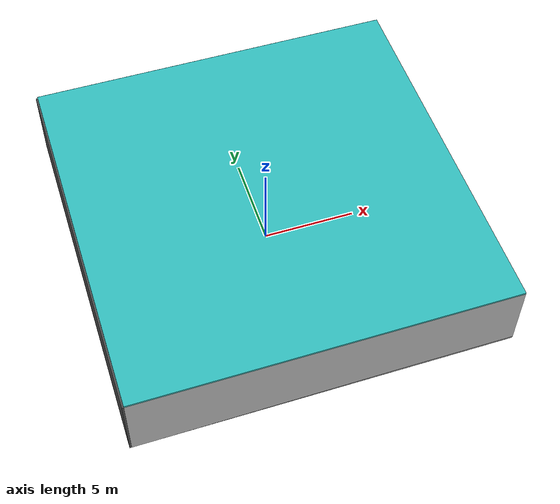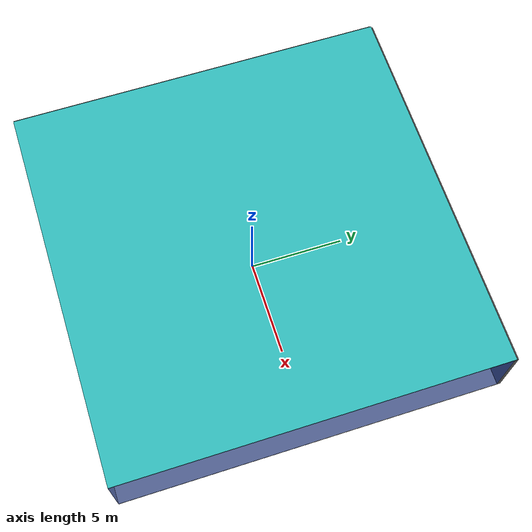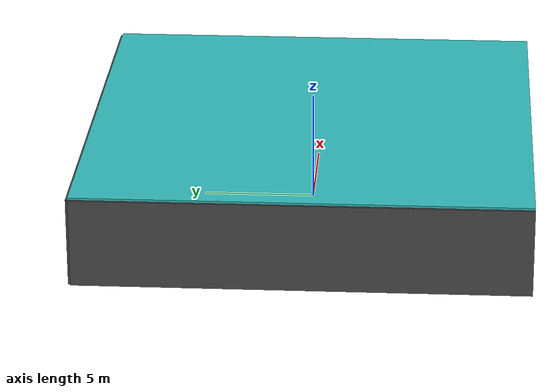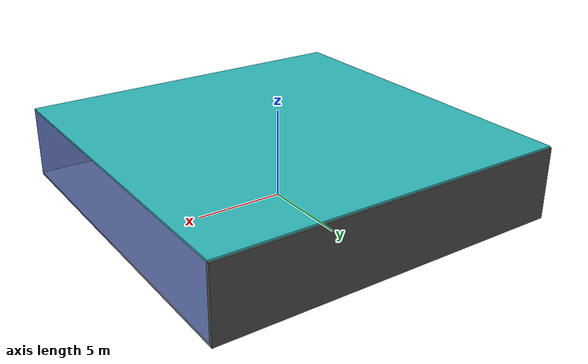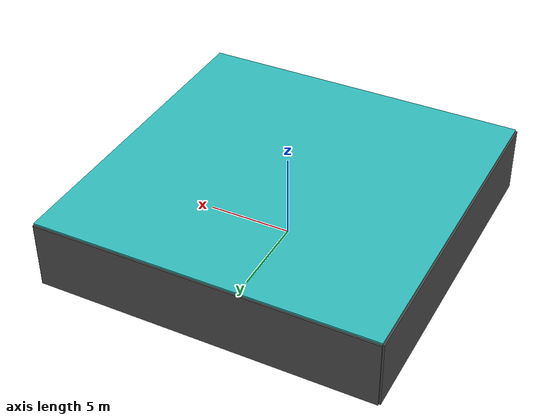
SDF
<sdf version="1.4">
 <world name="default">
  <physics type="ode">
   <max_step_size>0.001</max_step_size>
   <real_time_factor>1</real_time_factor>
   <real_time_update_rate>1000</real_time_update_rate>
   <gravity>0 0 -9.8</gravity>
  </physics>
  <scene><ambient>0.4 0.4 0.4 1</ambient><background>0.7 0.7 0.7 1</background><shadows>1</shadows></scene>
  <model name="Surrounding">
   <static>1</static>
   <link name="Ceiling">
    <collision name="Ceiling_Collision"><geometry><box><size>20 20 0.1</size></box></geometry></collision>
    <visual name="Ceiling_Visual">
     <geometry><box><size>20 20 0.1</size></box></geometry>
     <material>
      <script><uri>file://media/materials/scripts/gazebo.material</uri><name>Gazebo/Turquoise</name></script>
     </material>
    </visual>
    <pose>0 0 4.05 0 0 0</pose>
   </link>
   <link name="Wall_South">
    <collision name="Wall_South_Collision">
     <geometry><box><size>20 0 4</size></box></geometry>
     <pose>0 0 2 0 -0 0</pose>
    </collision>
    <visual name="Wall_South_Visual">
     <pose>0 0 2 0 -0 0</pose>
     <geometry><box><size>20 0 4</size></box></geometry>
     <material>
      <script><uri>file://media/materials/scripts/gazebo.material</uri><name>Gazebo/LightOff</name></script>
     </material>
    </visual>
    <velocity_decay><linear>0</linear><angular>0</angular></velocity_decay>
    <pose>0 -10 0 0 -0 0</pose>
   </link>
   <link name="Wall_East">
    <collision name="Wall_21_Collision">
     <geometry><box><size>20 0 4</size></box></geometry>
     <pose>0 0 2 0 -0 0</pose>
    </collision>
    <visual name="Wall_21_Visual">
     <pose>0 0 2 0 -0 0</pose>
     <geometry><box><size>20 0 4</size></box></geometry>
     <material>
      <script><uri>file://media/materials/scripts/gazebo.material</uri><name>Gazebo/BlueTransparent</name></script>
     </material>
    </visual>
    <velocity_decay><linear>0</linear><angular>0</angular></velocity_decay>
    <pose>10 0 0 0 -0 1.5708</pose>
   </link>
   <link name="Wall_North">
    <collision name="Wall_22_Collision">
     <geometry><box><size>20 0.2 4</size></box></geometry>
     <pose>0 0 2 0 -0 0</pose>
    </collision>
    <visual name="Wall_22_Visual">
     <pose>0 0 2 0 -0 0</pose>
     <geometry><box><size>20 0.2 4</size></box></geometry>
     <material>
      <script><uri>file://media/materials/scripts/gazebo.material</uri><name>Gazebo/DarkGrey</name></script>
     </material>
    </visual>
    <velocity_decay><linear>0</linear><angular>0</angular></velocity_decay>
    <pose>0 10 0 0 -0 0</pose>
   </link>
   <link name="Wall_West">
    <collision name="Wall_23_Collision">
     <geometry><box><size>20 0.2 4</size></box></geometry>
     <pose>0 0 2 0 -0 0</pose>
    </collision>
    <visual name="Wall_23_Visual">
     <pose>0 0 2 0 -0 0</pose>
     <geometry><box><size>20 0.2 4</size></box></geometry>
     <material>
      <script><uri>file://media/materials/scripts/gazebo.material</uri><name>Gazebo/Road</name></script>
     </material>
    </visual>
    <velocity_decay><linear>0</linear><angular>0</angular></velocity_decay>
    <pose>-10 0 0 0 0 -1.5708</pose>
   </link>
   <link name="Ground_link">
    <collision name="collision">
     <pose>0 0 .05 0 -0 0</pose>
     <geometry><box><size>20 20 0.1</size></box></geometry>
    </collision>
    <visual name="visual">
     <pose>0 0 .05 0 -0 0</pose>
     <geometry><box><size>20 20 0.1</size></box></geometry>
     <material>
      <script><uri>file://media/materials/scripts/gazebo.material</uri><name>Gazebo/Grey</name></script>
     </material>
    </visual>
   </link>
   <static>1</static>
  </model>
  <spherical_coordinates>
   <surface_model>EARTH_WGS84</surface_model>
   <latitude_deg>0</latitude_deg>
   <longitude_deg>0</longitude_deg>
   <elevation>0</elevation>
   <heading_deg>0</heading_deg>
  </spherical_coordinates>
  <light name="lightball_0" type="diffuse">
   <diffuse>0.8 0.8 0.8 1</diffuse>
   <specular>0.2 0.2 0.2 1</specular>
   <attenuation>
    <range>100</range>
    <constant>0.7</constant>
    <linear>0.01</linear>
    <quadratic>0.001</quadratic>
   </attenuation>
   <direction>-0.5 0.1 -0.9</direction>
   <pose>4.68827752904 0.15595233471 0.69491485518 0 0 0</pose>
  </light>
  <light name="lightball_1" type="diffuse">
   <diffuse>0.8 0.8 0.8 1</diffuse>
   <specular>0.2 0.2 0.2 1</specular>
   <attenuation>
    <range>100</range>
    <constant>0.7</constant>
    <linear>0.01</linear>
    <quadratic>0.001</quadratic>
   </attenuation>
   <direction>-0.5 0.1 -0.9</direction>
   <pose>4.90762789836 4.27773148947 0.999068103403 0 0 0</pose>
  </light>
  <light name="lightball_2" type="diffuse">
   <diffuse>0.8 0.8 0.8 1</diffuse>
   <specular>0.2 0.2 0.2 1</specular>
   <attenuation>
    <range>100</range>
    <constant>0.7</constant>
    <linear>0.01</linear>
    <quadratic>0.001</quadratic>
   </attenuation>
   <direction>-0.5 0.1 -0.9</direction>
   <pose>2.35252792351 -0.840908831702 2.4107661502 0 0 0</pose>
  </light>
  <light name="lightball_3" type="diffuse">
   <diffuse>0.8 0.8 0.8 1</diffuse>
   <specular>0.2 0.2 0.2 1</specular>
   <attenuation>
    <range>100</range>
    <constant>0.7</constant>
    <linear>0.01</linear>
    <quadratic>0.001</quadratic>
   </attenuation>
   <direction>-0.5 0.1 -0.9</direction>
   <pose>8.63157011837 -1.13921087952 2.22001385846 0 0 0</pose>
  </light>
  <light name="lightball_4" type="diffuse">
   <diffuse>0.8 0.8 0.8 1</diffuse>
   <specular>0.2 0.2 0.2 1</specular>
   <attenuation>
    <range>100</range>
    <constant>0.7</constant>
    <linear>0.01</linear>
    <quadratic>0.001</quadratic>
   </attenuation>
   <direction>-0.5 0.1 -0.9</direction>
   <pose>5.63903190456 -3.14705384906 1.30099605781 0 0 0</pose>
  </light>
  <light name="lightball_5" type="diffuse">
   <diffuse>0.8 0.8 0.8 1</diffuse>
   <specular>0.2 0.2 0.2 1</specular>
   <attenuation>
    <range>100</range>
    <constant>0.7</constant>
    <linear>0.01</linear>
    <quadratic>0.001</quadratic>
   </attenuation>
   <direction>-0.5 0.1 -0.9</direction>
   <pose>-6.96297107368 9.77572479482 2.11762159694 0 0 0</pose>
  </light>
  <light name="lightball_6" type="diffuse">
   <diffuse>0.8 0.8 0.8 1</diffuse>
   <specular>0.2 0.2 0.2 1</specular>
   <attenuation>
    <range>100</range>
    <constant>0.7</constant>
    <linear>0.01</linear>
    <quadratic>0.001</quadratic>
   </attenuation>
   <direction>-0.5 0.1 -0.9</direction>
   <pose>-8.70622105957 -4.55876990595 2.68855291532 0 0 0</pose>
  </light>
  <include><uri>model://table</uri><pose>2.04628706848 -4.00399316201 0 0 0 2.64177202814</pose></include>
  <include>
   <uri>model://construction_cone</uri>
   <pose>4.38003480335 1.57110416068 0 0 0 1.84707161462</pose>
  </include>
 </world>
</sdf>

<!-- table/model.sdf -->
<sdf version="1.5">
  <model name="table">
    <static>true</static>
    <link name="link">
      <collision name="surface">
        <pose>0 0 1.0 0 0 0</pose>
        <geometry>
          <box>
            <size>1.5 0.8 0.03</size>
          </box>
        </geometry>
        <surface>
          <friction>
            <ode>
              <mu>0.6</mu>
              <mu2>0.6</mu2>
            </ode>
          </friction>
        </surface>
      </collision>
      <visual name="visual1">
        <pose>0 0 1.0 0 0 0</pose>
        <geometry>
          <box>
            <size>1.5 0.8 0.03</size>
          </box>
        </geometry>
        <material>
          <script>
            <uri>model://media/materials/scripts/gazebo.material</uri>
            <name>Gazebo/Wood</name>
          </script>
        </material>
      </visual>
      <collision name="front_left_leg">
        <pose>0.68 0.38 0.5 0 0 0</pose>
        <geometry>
          <cylinder>
            <radius>0.02</radius>
            <length>1.0</length>
          </cylinder>
        </geometry>
      </collision>
      <visual name="front_left_leg">
        <pose>0.68 0.38 0.5 0 0 0</pose>
        <geometry>
          <cylinder>
            <radius>0.02</radius>
            <length>1.0</length>
          </cylinder>
        </geometry>
        <material>
          <script>
            <uri>model://media/materials/scripts/gazebo.material</uri>
            <name>Gazebo/Grey</name>
          </script>
        </material>
      </visual>
      <collision name="front_right_leg">
        <pose>0.68 -0.38 0.5 0 0 0</pose>
        <geometry>
          <cylinder>
            <radius>0.02</radius>
            <length>1.0</length>
          </cylinder>
        </geometry>
      </collision>
      <visual name="front_right_leg">
        <pose>0.68 -0.38 0.5 0 0 0</pose>
        <geometry>
          <cylinder>
            <radius>0.02</radius>
            <length>1.0</length>
          </cylinder>
        </geometry>
        <material>
          <script>
            <uri>model://media/materials/scripts/gazebo.material</uri>
            <name>Gazebo/Grey</name>
          </script>
        </material>
      </visual>
      <collision name="back_right_leg">
        <pose>-0.68 -0.38 0.5 0 0 0</pose>
        <geometry>
          <cylinder>
            <radius>0.02</radius>
            <length>1.0</length>
          </cylinder>
        </geometry>
      </collision>
      <visual name="back_right_leg">
        <pose>-0.68 -0.38 0.5 0 0 0</pose>
        <geometry>
          <cylinder>
            <radius>0.02</radius>
            <length>1.0</length>
          </cylinder>
        </geometry>
        <material>
          <script>
            <uri>model://media/materials/scripts/gazebo.material</uri>
            <name>Gazebo/Grey</name>
          </script>
        </material>
      </visual>
      <collision name="back_left_leg">
        <pose>-0.68 0.38 0.5 0 0 0</pose>
        <geometry>
          <cylinder>
            <radius>0.02</radius>
            <length>1.0</length>
          </cylinder>
        </geometry>
      </collision>
      <visual name="back_left_leg">
        <pose>-0.68 0.38 0.5 0 0 0</pose>
        <geometry>
          <cylinder>
            <radius>0.02</radius>
            <length>1.0</length>
          </cylinder>
        </geometry>
        <material>
          <script>
            <uri>model://media/materials/scripts/gazebo.material</uri>
            <name>Gazebo/Grey</name>
          </script>
        </material>
      </visual>
    </link>
  </model>
</sdf>

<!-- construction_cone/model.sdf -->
<sdf version="1.5">
  <model name="Construction Cone">
    <link name="link">
      <collision name="collision">
        <geometry>
          <mesh>
            <scale>10 10 10</scale>
            <uri>file://isr-testbed/construction_cone/meshes/construction_cone.dae</uri>
          </mesh>
        </geometry>
      </collision>
      <visual name="visual">
        <geometry>
          <mesh>
            <scale>10 10 10</scale>
            <uri>file://isr-testbed/construction_cone/meshes/construction_cone.dae</uri>
          </mesh>
        </geometry>
      </visual>
    </link>
  </model>
</sdf>
